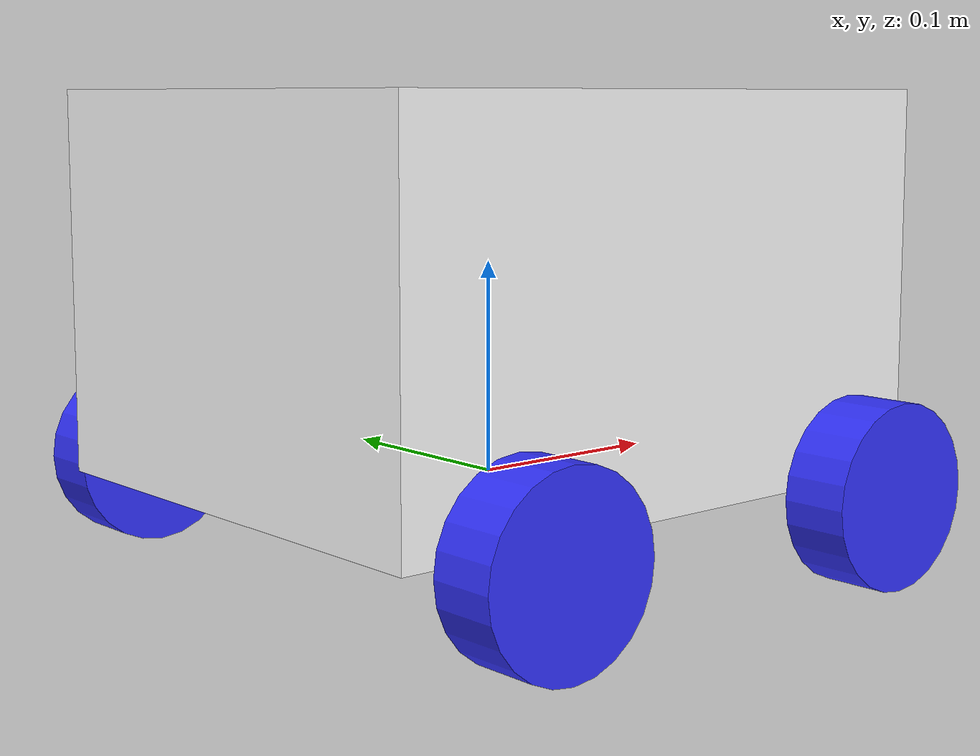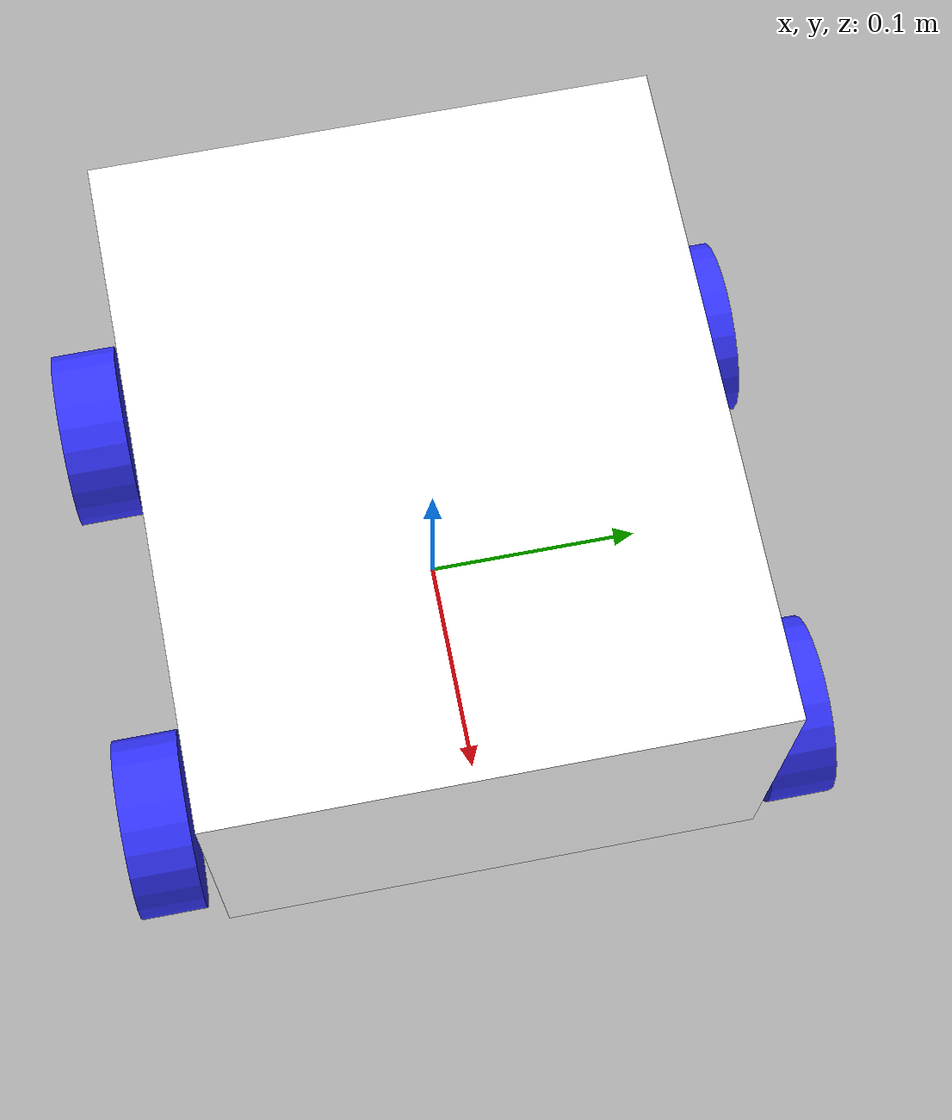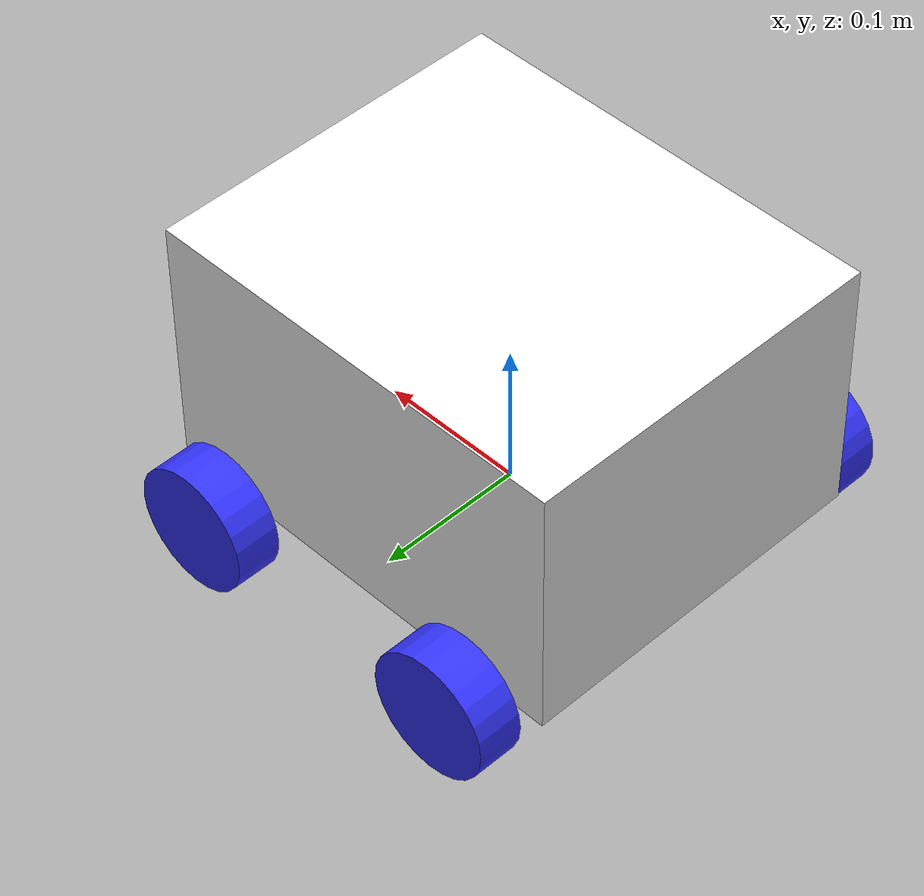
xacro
<?xml version="1.0"?>
<robot xmlns:xacro="http://www.ros.org/wiki/xacro">

    <xacro:include filename="inertial_macro.xacro"/>

    <material name="white">
        <color rgba="1 1 1 1"/>
    </material>

    <material name="blue">
        <color rgba="0.2 0.2 1 1"/>
    </material>

    <material name="black">
        <color rgba="0 0 0 1"/>
    </material>

    <link name="base_link">
    </link>

    <!-- CHASSIS -->
    <joint name="chassis_joint" type="fixed">
        <parent link="base_link"/>
        <child link="chassis"/>
        <origin xyz="-0.15 0 0"/>
    </joint>

    <link name="chassis">
        <visual>
            <origin xyz="0.15 0 0.09" rpy="0 0 0"/>
            <geometry>
                <box size="0.3 0.25 0.18"/>
            </geometry>
            <material name="white"/>
        </visual>

        <collision>
            <origin xyz="0.15 0 0.12" rpy="0 0 0"/>
            <geometry>
                <box size="0.3 0.25 0.24"/>
            </geometry>
            <material name="white"/>
        </collision>

        <xacro:inertial_box mass="2.7" x="0.3" y="0.25" z="0.24">
            <origin xyz="0.15 0 0.12" rpy="0 0 0"/>
        </xacro:inertial_box>
    </link>
    <gazebo reference="chassis">
    </gazebo>

    <!-- WHEELS-->
    <!-- FRONT LEFT WHEEL -->

    <joint name="front_left_wheel_joint" type="continuous">
        <parent link="base_link"/>
        <child link="front_left_wheel"/>
        <origin xyz="0.10 0.15 0" rpy="-${pi/2} 0 0"/>
        <axis xyz="0 0 1"/>
        <limit effort="1" velocity="10"/>
    </joint>

    <link name="front_left_wheel">
        <visual>
            <geometry>
                <cylinder length="0.031" radius="0.0425" />
            </geometry>
            <material name="blue"/>
        </visual>

        <collision>
            <geometry>
                <sphere radius="0.0425" />
            </geometry>
            <material name="blue"/>
        </collision>

        <xacro:inertial_cylinder mass="0.054" length="0.031" radius="0.0425">
            <origin xyz="0 0 0" rpy="0 0 0"/>
        </xacro:inertial_cylinder>
    </link>

    <gazebo reference="front_left_wheel">
    </gazebo>

    <!-- FRONT RIGHT WHEEL -->

    <joint name="front_right_wheel_joint" type="continuous">
        <parent link="base_link"/>
        <child link="front_right_wheel"/>
        <origin xyz="0.10 -0.15 0" rpy="${pi/2} 0 0"/>
        <axis xyz="0 0 -1"/>
        <limit effort="1" velocity="10"/>
    </joint>

    <link name="front_right_wheel">
        <visual>
            <geometry>
                <cylinder length="0.031" radius="0.0425" />
            </geometry>
            <material name="blue"/>
        </visual>

        <collision>
            <geometry>
                <sphere radius="0.0425" />
            </geometry>
            <material name="blue"/>
        </collision>

        <xacro:inertial_cylinder mass="0.054" length="0.031" radius="0.0425">
            <origin xyz="0 0 0" rpy="0 0 0"/>
        </xacro:inertial_cylinder>

    </link>

    <gazebo reference="front_right_wheel">
    </gazebo>

    <!-- BACK LEFT WHEEL -->
    <joint name="back_left_wheel_joint" type="continuous">
        <parent link="base_link"/>
        <child link="back_left_wheel"/>
        <origin xyz="-0.10 0.15 0" rpy="-${pi/2} 0 0"/>
        <axis xyz="0 0 1"/>
        <limit effort="1" velocity="10"/>

    </joint>

    <link name="back_left_wheel">
        <visual>
            <geometry>
                <cylinder length="0.031" radius="0.0425" />
            </geometry>
            <material name="blue"/>
        </visual>

        <collision>
            <geometry>
                <sphere  radius="0.0425" />
            </geometry>
            <material name="blue"/>
        </collision>

         <xacro:inertial_cylinder mass="0.054" length="0.031" radius="0.0425">
            <origin xyz="0 0 0" rpy="0 0 0"/>
        </xacro:inertial_cylinder>
    </link>

    <gazebo reference="back_left_wheel">
    </gazebo>

    <!-- BACK RIGHT WHEEL -->
    <joint name="back_right_wheel_joint" type="continuous">
        <parent link="base_link"/>
        <child link="back_right_wheel"/>
        <origin xyz="-0.10 -0.15 0" rpy="${pi/2} 0 0"/>
        <axis xyz="0 0 -1"/>
        <limit effort="1" velocity="10"/>
    </joint>

    <link name="back_right_wheel">
        <visual>
            <geometry>
                <cylinder length="0.031" radius="0.0425" />
            </geometry>
            <material name="blue"/>
        </visual>

        <collision>
            <geometry>
                <sphere radius="0.0425" />
            </geometry>
            <material name="blue"/>
        </collision>

         <xacro:inertial_cylinder mass="0.054" length="0.031" radius="0.0425">
            <origin xyz="0 0 0" rpy="0 0 0"/>
        </xacro:inertial_cylinder>
    </link>

    <gazebo reference="back_right_wheel">
    </gazebo>

</robot>
